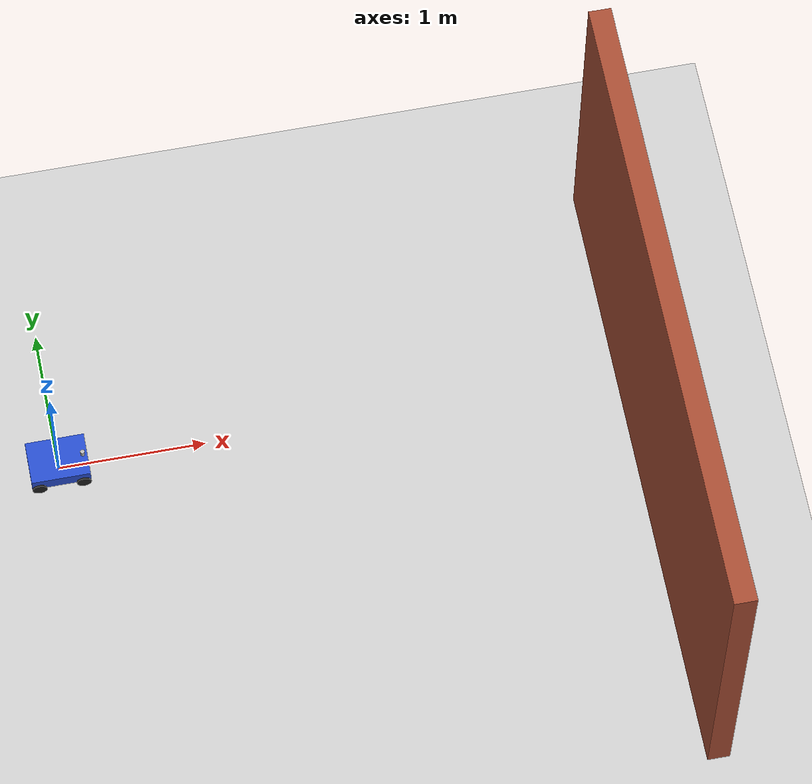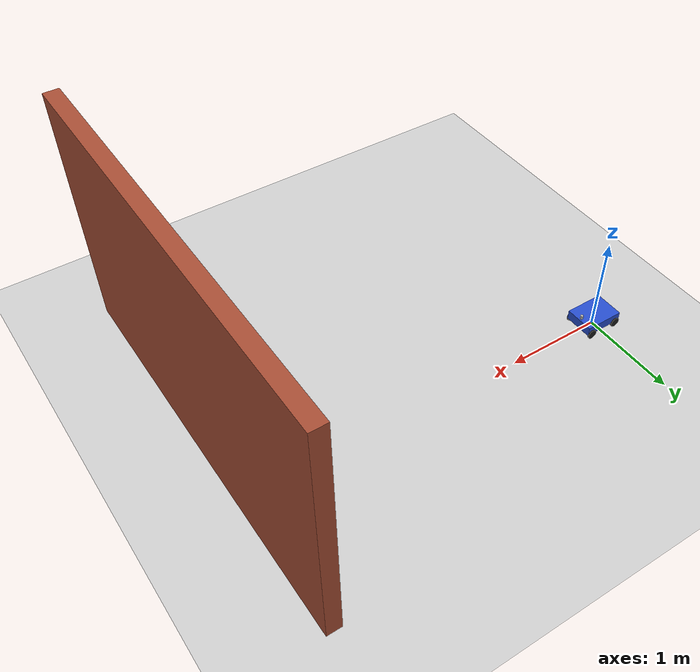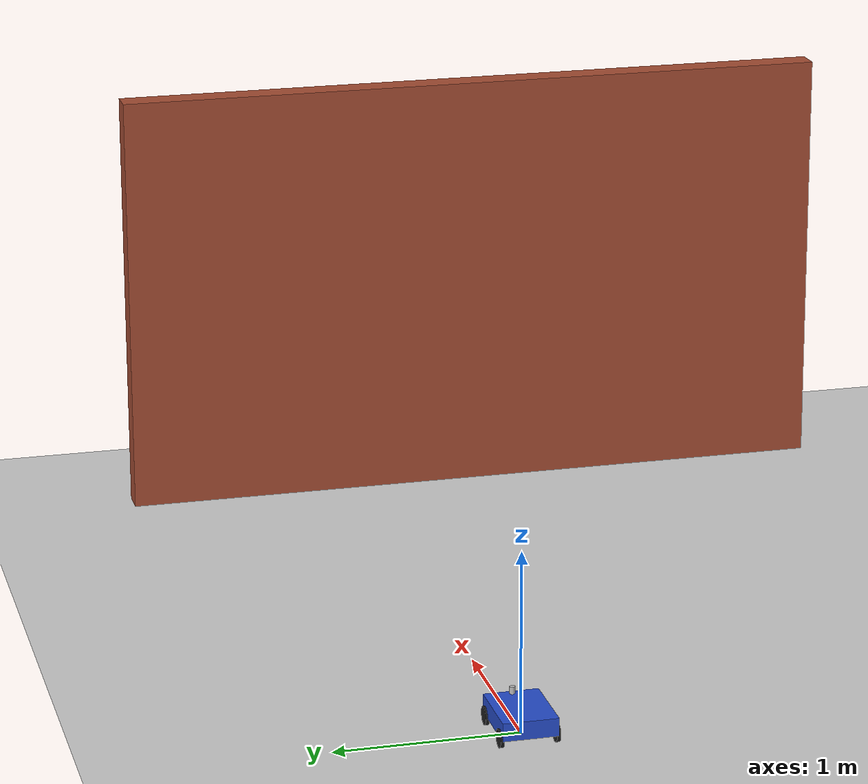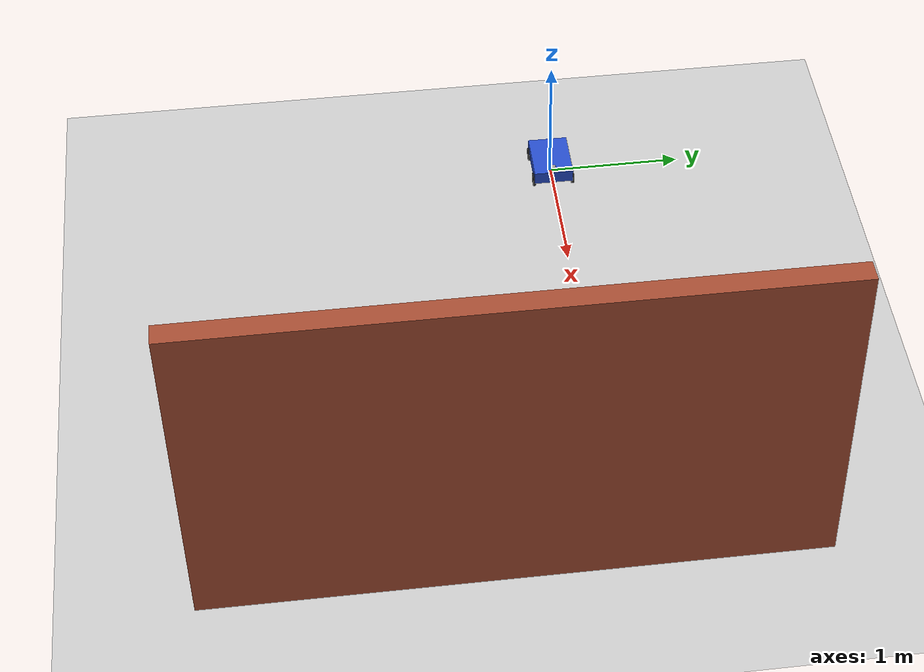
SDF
<sdf version="1.7">
 <world name="default">
  <light name="sun" type="directional">
   <pose>0 0 10 0 -0 0</pose>
   <diffuse>0.8 0.8 0.8 1</diffuse>
   <specular>0.2 0.2 0.2 1</specular>
   <attenuation>
    <range>1000</range>
    <constant>0.9</constant>
    <linear>0.01</linear>
    <quadratic>0.001</quadratic>
   </attenuation>
   <direction>-0.5 0.1 -0.9</direction>
   <spot><inner_angle>0</inner_angle><outer_angle>0</outer_angle><falloff>0</falloff></spot>
  </light>
  <model name="ground_plane">
   <static>1</static>
   <link name="link">
    <collision name="collision">
     <geometry><plane><normal>0 0 1</normal><size>100 100</size></plane></geometry>
     <surface><friction><ode><mu>100</mu><mu2>50</mu2></ode></friction></surface>
    </collision>
    <visual name="visual">
     <cast_shadows>0</cast_shadows>
     <geometry><plane><normal>0 0 1</normal><size>100 100</size></plane></geometry>
     <material>
      <script><uri>file://media/materials/scripts/gazebo.material</uri><name>Gazebo/Grey</name></script>
     </material>
    </visual>
   </link>
  </model>
  <gravity>0 0 -9.8</gravity>
  <magnetic_field>6e-06 2.3e-05 -4.2e-05</magnetic_field>
  <atmosphere type="adiabatic"/>
  <physics type="ode">
   <max_step_size>0.001</max_step_size>
   <real_time_factor>1</real_time_factor>
   <real_time_update_rate>1000</real_time_update_rate>
  </physics>
  <scene><ambient>0.4 0.4 0.4 1</ambient><background>0.7 0.7 0.7 1</background><shadows>1</shadows></scene>
  <audio><device>default</device></audio>
  <spherical_coordinates>
   <surface_model>EARTH_WGS84</surface_model>
   <latitude_deg>0</latitude_deg>
   <longitude_deg>0</longitude_deg>
   <elevation>0</elevation>
   <heading_deg>0</heading_deg>
  </spherical_coordinates>
  <model name="four_wheel_car">
   <link name="base_footprint">
    <inertial>
     <pose>0.000846 0 0.050323 0 -0 0</pose>
     <mass>2.01</mass>
     <inertia>
      <ixx>0.010043</ixx>
      <ixy>0</ixy>
      <ixz>-0.00010995</ixz>
      <iyy>0.0103306</iyy>
      <iyz>0</iyz>
      <izz>0.0102886</izz>
     </inertia>
    </inertial>
    <collision name="base_footprint_fixed_joint_lump__base_link_collision">
     <pose>0 0 0.05 0 -0 0</pose>
     <geometry><box><size>0.4 0.3 0.1</size></box></geometry>
    </collision>
    <collision name="base_footprint_fixed_joint_lump__sonar_link_collision_1">
     <pose>0.17 0 0.115 0 -0 0</pose>
     <geometry><cylinder><length>0.05</length><radius>0.015</radius></cylinder></geometry>
    </collision>
    <visual name="base_footprint_fixed_joint_lump__base_link_visual">
     <pose>0 0 0.05 0 -0 0</pose>
     <geometry><box><size>0.4 0.3 0.1</size></box></geometry>
     <material>
      <script><name>Gazebo/Blue</name><uri>file://media/materials/scripts/gazebo.material</uri></script>
     </material>
    </visual>
    <visual name="base_footprint_fixed_joint_lump__sonar_link_visual_1">
     <pose>0.17 0 0.115 0 -0 0</pose>
     <geometry><cylinder><length>0.05</length><radius>0.015</radius></cylinder></geometry>
    </visual>
    <sensor name="sonar_sensor" type="ray">
     <visualize>1</visualize>
     <update_rate>10</update_rate>
     <always_on>1</always_on>
     <ray>
      <scan>
       <horizontal>
        <samples>9</samples>
        <resolution>1</resolution>
        <min_angle>-0.15</min_angle>
        <max_angle>0.15</max_angle>
       </horizontal>
       <vertical>
        <samples>3</samples>
        <resolution>1</resolution>
        <min_angle>-0.05</min_angle>
        <max_angle>0.05</max_angle>
       </vertical>
      </scan>
      <range><min>0.02</min><max>3</max><resolution>0.01</resolution></range>
      <noise><type>gaussian</type><mean>0</mean><stddev>0.01</stddev></noise>
     </ray>
     <plugin name="sonar_controller" filename="libgazebo_ros_ray_sensor.so">
      <ros><namespace>/</namespace><remapping>~/out:=/sonar</remapping></ros>
      <output_type>sensor_msgs/Range</output_type>
      <frame_name>sonar_link</frame_name>
     </plugin>
     <pose>0.17 0 0.115 0 -0 0</pose>
    </sensor>
   </link>
   <joint name="front_left_wheel_joint" type="revolute">
    <pose relative_to="base_footprint">0.15 0.15 0 0 -0 0</pose>
    <parent>base_footprint</parent>
    <child>front_left_wheel</child>
    <axis>
     <xyz>0 1 0</xyz>
     <limit><lower>-1e+16</lower><upper>1e+16</upper></limit>
     <dynamics><spring_reference>0</spring_reference><spring_stiffness>0</spring_stiffness></dynamics>
    </axis>
   </joint>
   <link name="front_left_wheel">
    <pose relative_to="front_left_wheel_joint">0 0 0 0 -0 0</pose>
    <inertial>
     <mass>0.5</mass>
     <inertia><ixx>0.001</ixx><ixy>0</ixy><ixz>0</ixz><iyy>0.001</iyy><iyz>0</iyz><izz>0.001</izz></inertia>
    </inertial>
    <collision name="front_left_wheel_collision">
     <pose>0 0 0 1.5708 -0 0</pose>
     <geometry><cylinder><length>0.02</length><radius>0.05</radius></cylinder></geometry>
    </collision>
    <visual name="front_left_wheel_visual">
     <pose>0 0 0 1.5708 -0 0</pose>
     <geometry><cylinder><length>0.02</length><radius>0.05</radius></cylinder></geometry>
     <material>
      <script><name>Gazebo/Black</name><uri>file://media/materials/scripts/gazebo.material</uri></script>
     </material>
    </visual>
   </link>
   <joint name="front_right_wheel_joint" type="revolute">
    <pose relative_to="base_footprint">0.15 -0.15 0 0 -0 0</pose>
    <parent>base_footprint</parent>
    <child>front_right_wheel</child>
    <axis>
     <xyz>0 1 0</xyz>
     <limit><lower>-1e+16</lower><upper>1e+16</upper></limit>
     <dynamics><spring_reference>0</spring_reference><spring_stiffness>0</spring_stiffness></dynamics>
    </axis>
   </joint>
   <link name="front_right_wheel">
    <pose relative_to="front_right_wheel_joint">0 0 0 0 -0 0</pose>
    <inertial>
     <mass>0.5</mass>
     <inertia><ixx>0.001</ixx><ixy>0</ixy><ixz>0</ixz><iyy>0.001</iyy><iyz>0</iyz><izz>0.001</izz></inertia>
    </inertial>
    <collision name="front_right_wheel_collision">
     <pose>0 0 0 1.5708 -0 0</pose>
     <geometry><cylinder><length>0.02</length><radius>0.05</radius></cylinder></geometry>
    </collision>
    <visual name="front_right_wheel_visual">
     <pose>0 0 0 1.5708 -0 0</pose>
     <geometry><cylinder><length>0.02</length><radius>0.05</radius></cylinder></geometry>
     <material>
      <script><name>Gazebo/Black</name><uri>file://media/materials/scripts/gazebo.material</uri></script>
     </material>
    </visual>
   </link>
   <joint name="rear_left_wheel_joint" type="revolute">
    <pose relative_to="base_footprint">-0.15 0.15 0 0 -0 0</pose>
    <parent>base_footprint</parent>
    <child>rear_left_wheel</child>
    <axis>
     <xyz>0 1 0</xyz>
     <limit><lower>-1e+16</lower><upper>1e+16</upper></limit>
     <dynamics><spring_reference>0</spring_reference><spring_stiffness>0</spring_stiffness></dynamics>
    </axis>
   </joint>
   <link name="rear_left_wheel">
    <pose relative_to="rear_left_wheel_joint">0 0 0 0 -0 0</pose>
    <inertial>
     <mass>0.5</mass>
     <inertia><ixx>0.001</ixx><ixy>0</ixy><ixz>0</ixz><iyy>0.001</iyy><iyz>0</iyz><izz>0.001</izz></inertia>
    </inertial>
    <collision name="rear_left_wheel_collision">
     <pose>0 0 0 1.5708 -0 0</pose>
     <geometry><cylinder><length>0.02</length><radius>0.05</radius></cylinder></geometry>
    </collision>
    <visual name="rear_left_wheel_visual">
     <pose>0 0 0 1.5708 -0 0</pose>
     <geometry><cylinder><length>0.02</length><radius>0.05</radius></cylinder></geometry>
     <material>
      <script><name>Gazebo/Black</name><uri>file://media/materials/scripts/gazebo.material</uri></script>
     </material>
    </visual>
   </link>
   <joint name="rear_right_wheel_joint" type="revolute">
    <pose relative_to="base_footprint">-0.15 -0.15 0 0 -0 0</pose>
    <parent>base_footprint</parent>
    <child>rear_right_wheel</child>
    <axis>
     <xyz>0 1 0</xyz>
     <limit><lower>-1e+16</lower><upper>1e+16</upper></limit>
     <dynamics><spring_reference>0</spring_reference><spring_stiffness>0</spring_stiffness></dynamics>
    </axis>
   </joint>
   <link name="rear_right_wheel">
    <pose relative_to="rear_right_wheel_joint">0 0 0 0 -0 0</pose>
    <inertial>
     <mass>0.5</mass>
     <inertia><ixx>0.001</ixx><ixy>0</ixy><ixz>0</ixz><iyy>0.001</iyy><iyz>0</iyz><izz>0.001</izz></inertia>
    </inertial>
    <collision name="rear_right_wheel_collision">
     <pose>0 0 0 1.5708 -0 0</pose>
     <geometry><cylinder><length>0.02</length><radius>0.05</radius></cylinder></geometry>
    </collision>
    <visual name="rear_right_wheel_visual">
     <pose>0 0 0 1.5708 -0 0</pose>
     <geometry><cylinder><length>0.02</length><radius>0.05</radius></cylinder></geometry>
     <material>
      <script><name>Gazebo/Black</name><uri>file://media/materials/scripts/gazebo.material</uri></script>
     </material>
    </visual>
   </link>
   <static>0</static>
   <plugin name="diff_drive_controller" filename="libgazebo_ros_diff_drive.so">
    <ros><remapping>cmd_vel:=/cmd_vel</remapping></ros>
    <left_joint>rear_left_wheel_joint</left_joint>
    <right_joint>rear_right_wheel_joint</right_joint>
    <wheel_separation>0.3</wheel_separation>
    <wheel_diameter>0.1</wheel_diameter>
    <max_wheel_torque>10</max_wheel_torque>
    <odometry_frame>odom</odometry_frame>
    <robot_base_frame>base_link</robot_base_frame>
   </plugin>
   <pose>0.000194 0.00093 0.05 -0 -0 -0.000125</pose>
  </model>
  <model name="model">
   <pose>1.9875 -0.75 0 0 -0 0</pose>
   <link name="Wall_0">
    <collision name="Wall_0_Collision">
     <geometry><box><size>4.25 0.15 2.5</size></box></geometry>
     <pose>0 0 1.25 0 -0 0</pose>
    </collision>
    <visual name="Wall_0_Visual">
     <pose>0 0 1.25 0 -0 0</pose>
     <geometry><box><size>4.25 0.15 2.5</size></box></geometry>
     <material>
      <script><uri>file://media/materials/scripts/gazebo.material</uri><name>Gazebo/Bricks</name></script>
      <ambient>1 1 1 1</ambient>
     </material>
     <meta><layer>0</layer></meta>
    </visual>
    <pose>1.9125 0 0 0 -0 1.5708</pose>
   </link>
   <static>1</static>
  </model>
 </world>
</sdf>
